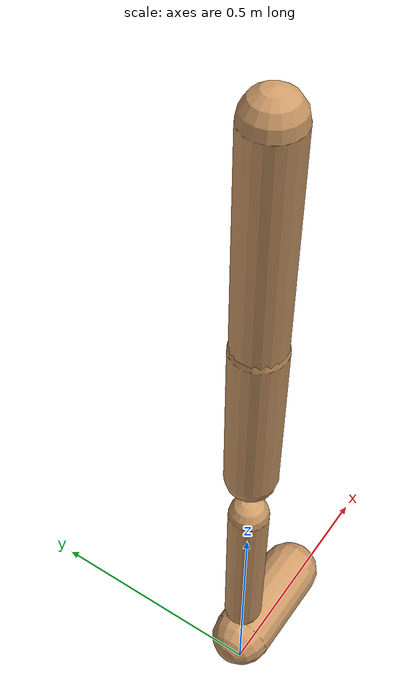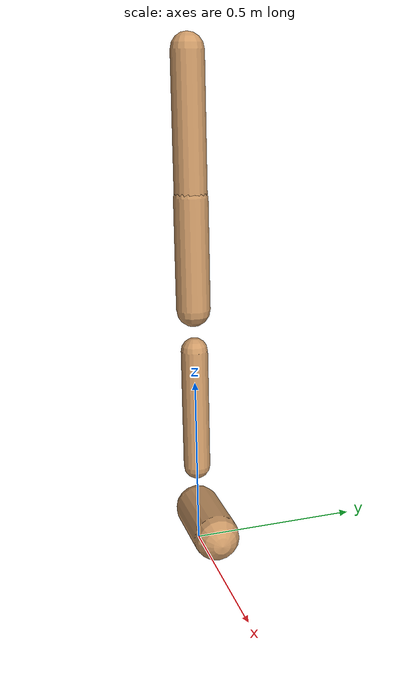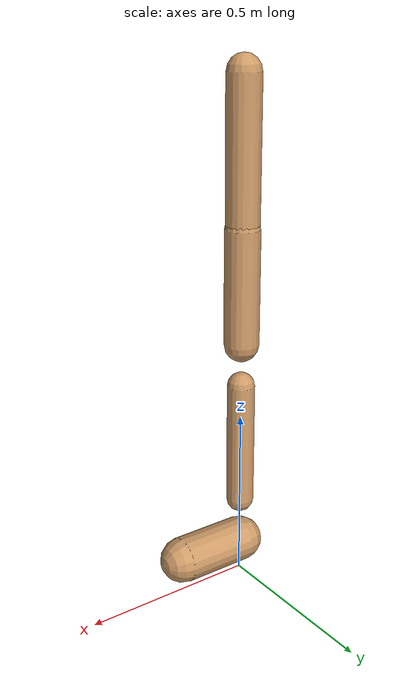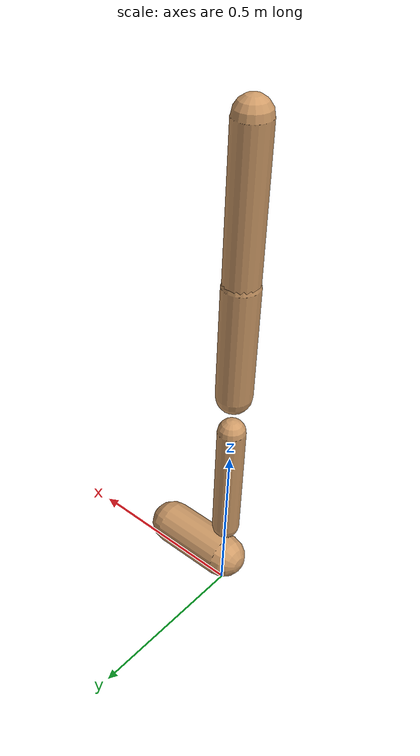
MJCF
<mujoco model="walker2d">
  <compiler angle="degree" coordinate="global" inertiafromgeom="true" />
  <default>
    <joint armature="0.01" damping=".1" limited="true" />
    <geom conaffinity="0" condim="3" contype="1" density="1000" friction="0.8 .1 .1" rgba="0.8 0.6 .4 1" />
  </default>
  <option integrator="RK4" timestep="0.002" />
  <worldbody>

    <body name="torso" pos="0 0 -0.2631351679559462">
      <joint armature="0" axis="1 0 0" damping="0" limited="false" name="ignorex" pos="0 0 0" stiffness="0" type="slide" />
      <joint armature="0" axis="0 0 1" damping="0" limited="false" name="ignorez" pos="0 0 0" ref="1.25" stiffness="0" type="slide" />
      <joint armature="0" axis="0 1 0" damping="0" limited="false" name="ignorey" pos="0 0 0" stiffness="0" type="hinge" />
      <geom fromto="0 0 1.45 0 0 1.05" name="torso_geom" size="0.04716661130651265" type="capsule" />
      <body name="thigh">
        <joint axis="0 -1 0" name="thigh_joint" pos="0 0 1.05" range="-150 0" type="hinge" />
        <geom fromto="0.0 0.0 1.05 0.0 0.0 0.7246429742949219" name="thigh_geom" size="0.049397559544109904" type="capsule" />
        <body name="leg" pos="0.0 0.0 0.12464297429492188">
          <joint axis="0 -1 0" name="leg_joint" pos="0 0 0.6" range="-150 0" type="hinge" />
          <geom fromto="0.0 0.0 0.6 0.0 0.0 0.2384921936610243" name="leg_geom" size="0.03951804763528792" type="capsule" />
          <body name="foot" pos="0.0 0.0 0.1384921936610243">
            <joint axis="0 -1 0" name="foot_joint" pos="0 0 0.1" range="-45 45" type="hinge" />
            <geom fromto="-0.0 0.0 0.09999999999999999 0.20558578250362758 0.0 0.09999999999999999" name="foot_geom" size="0.06566064172536715" type="capsule" />
          </body>
        </body>
      </body>

      <body name="thigh_left">
        <joint axis="0 -1 0" name="thigh_left_joint" pos="0 0 1.05" range="-150 0" type="hinge" />
        <geom fromto="0.0 0.0 1.05 0.0 0.0 0.7246429742949219" name="thigh_left_geom" rgba=".7 .3 .6 1" size="0.049397559544109904" type="capsule" />
        <body name="leg_left" pos="0.0 0.0 0.12464297429492188">
          <joint axis="0 -1 0" name="leg_left_joint" pos="0 0 0.6" range="-150 0" type="hinge" />
          <geom fromto="0.0 0.0 0.6 0.0 0.0 0.2384921936610243" name="leg_left_geom" rgba=".7 .3 .6 1" size="0.03951804763528792" type="capsule" />
          <body name="foot_left" pos="0.0 0.0 0.1384921936610243">
            <joint axis="0 -1 0" name="foot_left_joint" pos="0 0 0.1" range="-45 45" type="hinge" />
            <geom fromto="-0.0 0.0 0.09999999999999999 0.20558578250362758 0.0 0.09999999999999999" name="foot_left_geom" rgba=".7 .3 .6 1" size="0.06566064172536715" type="capsule" />
          </body>
        </body>
      </body>
    </body>
  </worldbody>
  <actuator>

    <motor ctrllimited="true" ctrlrange="-1.0 1.0" gear="100" joint="thigh_joint" />
    <motor ctrllimited="true" ctrlrange="-1.0 1.0" gear="100" joint="leg_joint" />
    <motor ctrllimited="true" ctrlrange="-1.0 1.0" gear="100" joint="foot_joint" />
    <motor ctrllimited="true" ctrlrange="-1.0 1.0" gear="100" joint="thigh_left_joint" />
    <motor ctrllimited="true" ctrlrange="-1.0 1.0" gear="100" joint="leg_left_joint" />
    <motor ctrllimited="true" ctrlrange="-1.0 1.0" gear="100" joint="foot_left_joint" />

  </actuator>
</mujoco>
